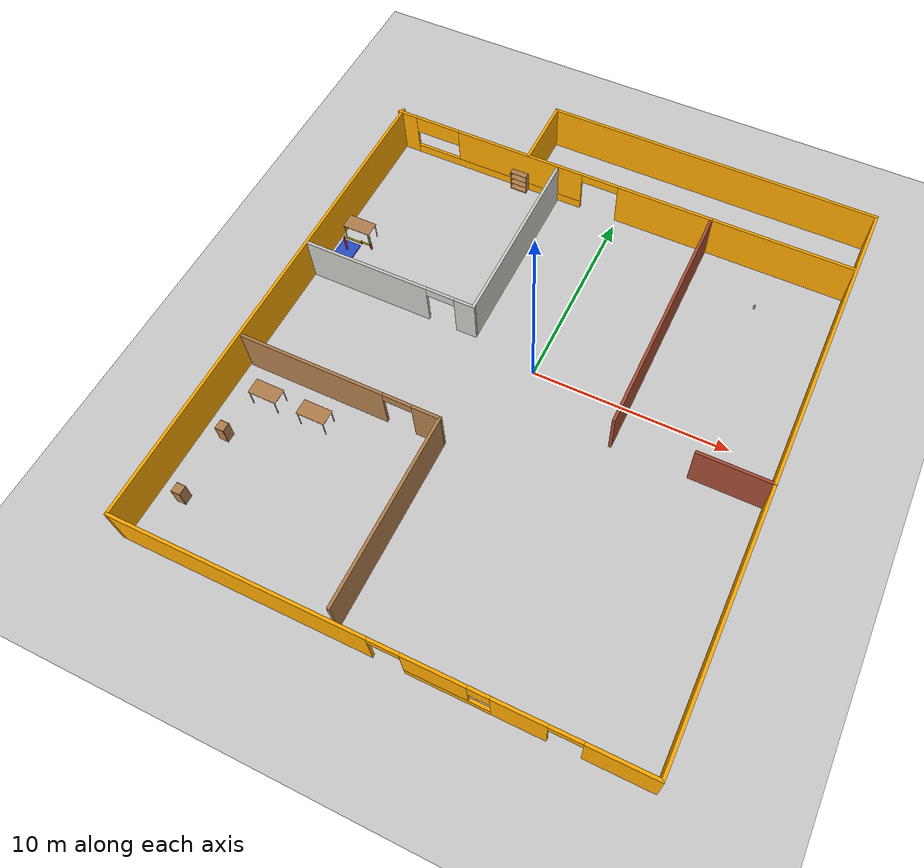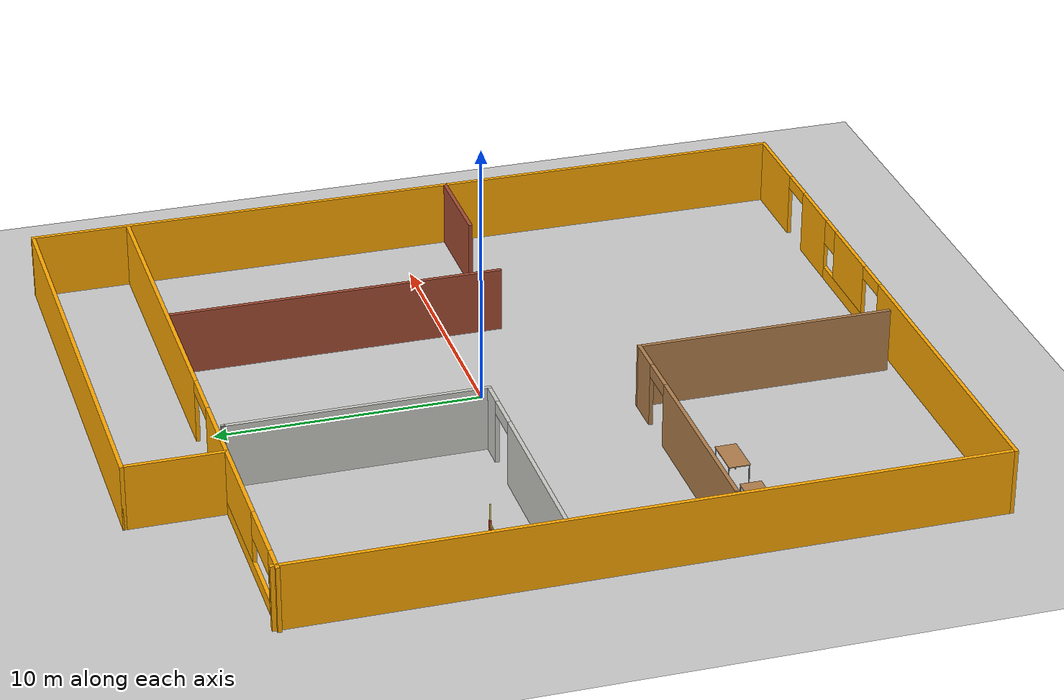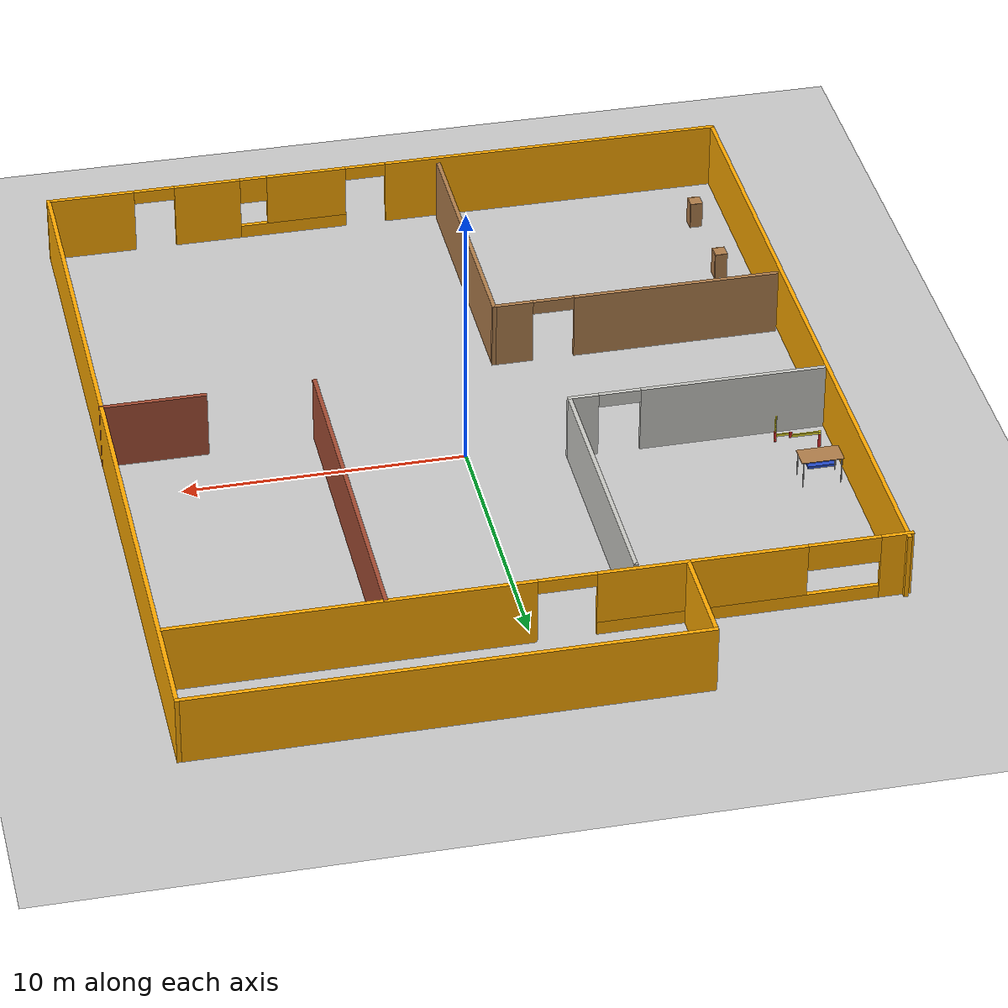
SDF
<sdf version="1.6">
 <world name="default">
  <plugin name="welcome" filename="libwelcome.so"/>
  <light name="sun" type="directional">
   <pose>0 0 10 0 -0 0</pose>
   <diffuse>0.8 0.8 0.8 1</diffuse>
   <specular>0.2 0.2 0.2 1</specular>
   <attenuation>
    <range>1000</range>
    <constant>0.9</constant>
    <linear>0.01</linear>
    <quadratic>0.001</quadratic>
   </attenuation>
   <direction>-0.5 0.1 -0.9</direction>
  </light>
  <model name="ground_plane">
   <static>1</static>
   <link name="link">
    <collision name="collision">
     <geometry><plane><normal>0 0 1</normal><size>100 100</size></plane></geometry>
     <surface>
      <contact><collide_bitmask>65535</collide_bitmask></contact>
      <friction><ode><mu>100</mu><mu2>50</mu2></ode></friction>
     </surface>
    </collision>
    <visual name="visual">
     <cast_shadows>0</cast_shadows>
     <geometry><plane><normal>0 0 1</normal><size>100 100</size></plane></geometry>
     <material>
      <script><uri>file://media/materials/scripts/gazebo.material</uri><name>Gazebo/Grey</name></script>
     </material>
    </visual>
   </link>
  </model>
  <gravity>0 0 -9.8</gravity>
  <magnetic_field>6e-06 2.3e-05 -4.2e-05</magnetic_field>
  <atmosphere type="adiabatic"/>
  <physics name="default_physics" default="0" type="ode">
   <max_step_size>0.001</max_step_size>
   <real_time_factor>1</real_time_factor>
   <real_time_update_rate>1000</real_time_update_rate>
  </physics>
  <scene><ambient>0.4 0.4 0.4 1</ambient><background>0.7 0.7 0.7 1</background><shadows>1</shadows></scene>
  <spherical_coordinates>
   <surface_model>EARTH_WGS84</surface_model>
   <latitude_deg>0</latitude_deg>
   <longitude_deg>0</longitude_deg>
   <elevation>0</elevation>
   <heading_deg>0</heading_deg>
  </spherical_coordinates>
  <model name="myhome">
   <pose>-0.2343 -0.560846 0 0 -0 0</pose>
   <link name="Wall_1">
    <collision name="Wall_1_Collision">
     <geometry><box><size>29.75 0.15 2.5</size></box></geometry>
     <pose>0 0 1.25 0 -0 0</pose>
    </collision>
    <visual name="Wall_1_Visual">
     <pose>0 0 1.25 0 -0 0</pose>
     <geometry><box><size>29.75 0.15 2.5</size></box></geometry>
     <material>
      <script><uri>file://media/materials/scripts/gazebo.material</uri><name>Gazebo/Grey</name></script>
      <ambient>1 0.666667 0 1</ambient>
     </material>
     <meta><layer>0</layer></meta>
    </visual>
    <pose>12.6114 0 0 0 0 -1.5708</pose>
   </link>
   <link name="Wall_10">
    <collision name="Wall_10_Collision">
     <geometry><box><size>12.75 0.15 2.5</size></box></geometry>
     <pose>0 0 1.25 0 -0 0</pose>
    </collision>
    <visual name="Wall_10_Visual">
     <pose>0 0 1.25 0 -0 0</pose>
     <geometry><box><size>12.75 0.15 2.5</size></box></geometry>
     <material>
      <script><uri>file://media/materials/scripts/gazebo.material</uri><name>Gazebo/Bricks</name></script>
      <ambient>1 1 1 1</ambient>
     </material>
     <meta><layer>0</layer></meta>
    </visual>
    <pose>5.14276 4.76599 0 0 -0 1.5708</pose>
   </link>
   <link name="Wall_12">
    <collision name="Wall_12_Collision">
     <geometry><box><size>9.75 0.15 2.5</size></box></geometry>
     <pose>0 0 1.25 0 -0 0</pose>
    </collision>
    <visual name="Wall_12_Visual">
     <pose>0 0 1.25 0 -0 0</pose>
     <geometry><box><size>9.75 0.15 2.5</size></box></geometry>
     <material>
      <script><uri>file://media/materials/scripts/gazebo.material</uri><name>Gazebo/CeilingTiled</name></script>
      <ambient>1 1 1 1</ambient>
     </material>
     <meta><layer>0</layer></meta>
    </visual>
    <pose>-3.26226 6.09462 0 0 0 -1.5708</pose>
   </link>
   <link name="Wall_13">
    <pose>-7.81226 1.29462 0 0 -0 3.14159</pose>
    <visual name="Wall_13_Visual_0">
     <pose>-4.07417 0 1.25 0 -0 0</pose>
     <geometry><box><size>1.10167 0.15 2.5</size></box></geometry>
     <material>
      <script><uri>file://media/materials/scripts/gazebo.material</uri><name>Gazebo/CeilingTiled</name></script>
      <ambient>1 1 1 1</ambient>
     </material>
     <meta><layer>0</layer></meta>
    </visual>
    <collision name="Wall_13_Collision_0">
     <geometry><box><size>1.10167 0.15 2.5</size></box></geometry>
     <pose>-4.07417 0 1.25 0 -0 0</pose>
    </collision>
    <visual name="Wall_13_Visual_1">
     <pose>1.30083 0 1.25 0 -0 0</pose>
     <geometry><box><size>6.64833 0.15 2.5</size></box></geometry>
     <material>
      <script><uri>file://media/materials/scripts/gazebo.material</uri><name>Gazebo/CeilingTiled</name></script>
      <ambient>1 1 1 1</ambient>
     </material>
     <meta><layer>0</layer></meta>
    </visual>
    <collision name="Wall_13_Collision_1">
     <geometry><box><size>6.64833 0.15 2.5</size></box></geometry>
     <pose>1.30083 0 1.25 0 -0 0</pose>
    </collision>
    <visual name="Wall_13_Visual_2">
     <pose>-2.77333 0 2.25 0 -0 0</pose>
     <geometry><box><size>1.5 0.15 0.5</size></box></geometry>
     <material>
      <script><uri>file://media/materials/scripts/gazebo.material</uri><name>Gazebo/CeilingTiled</name></script>
      <ambient>1 1 1 1</ambient>
     </material>
     <meta><layer>0</layer></meta>
    </visual>
    <collision name="Wall_13_Collision_2">
     <geometry><box><size>1.5 0.15 0.5</size></box></geometry>
     <pose>-2.77333 0 2.25 0 -0 0</pose>
    </collision>
   </link>
   <link name="Wall_15">
    <collision name="Wall_15_Collision">
     <geometry><box><size>9.75 0.15 2.5</size></box></geometry>
     <pose>0 0 1.25 0 -0 0</pose>
    </collision>
    <visual name="Wall_15_Visual">
     <pose>0 0 1.25 0 -0 0</pose>
     <geometry><box><size>9.75 0.15 2.5</size></box></geometry>
     <material>
      <script><uri>file://media/materials/scripts/gazebo.material</uri><name>Gazebo/Wood</name></script>
      <ambient>1 1 1 1</ambient>
     </material>
     <meta><layer>0</layer></meta>
    </visual>
    <pose>-1.91009 -9.54132 0 0 -0 1.5708</pose>
   </link>
   <link name="Wall_16">
    <pose>-7.08509 -4.74132 0 0 -0 3.14159</pose>
    <visual name="Wall_16_Visual_0">
     <pose>-4.50456 0 1.25 0 -0 0</pose>
     <geometry><box><size>1.49087 0.15 2.5</size></box></geometry>
     <material>
      <script><uri>file://media/materials/scripts/gazebo.material</uri><name>Gazebo/Wood</name></script>
      <ambient>1 1 1 1</ambient>
     </material>
     <meta><layer>0</layer></meta>
    </visual>
    <collision name="Wall_16_Collision_0">
     <geometry><box><size>1.49087 0.15 2.5</size></box></geometry>
     <pose>-4.50456 0 1.25 0 -0 0</pose>
    </collision>
    <visual name="Wall_16_Visual_1">
     <pose>1.49544 0 1.25 0 -0 0</pose>
     <geometry><box><size>7.50913 0.15 2.5</size></box></geometry>
     <material>
      <script><uri>file://media/materials/scripts/gazebo.material</uri><name>Gazebo/Wood</name></script>
      <ambient>1 1 1 1</ambient>
     </material>
     <meta><layer>0</layer></meta>
    </visual>
    <collision name="Wall_16_Collision_1">
     <geometry><box><size>7.50913 0.15 2.5</size></box></geometry>
     <pose>1.49544 0 1.25 0 -0 0</pose>
    </collision>
    <visual name="Wall_16_Visual_2">
     <pose>-3.00913 0 2.25 0 -0 0</pose>
     <geometry><box><size>1.5 0.15 0.5</size></box></geometry>
     <material>
      <script><uri>file://media/materials/scripts/gazebo.material</uri><name>Gazebo/Wood</name></script>
      <ambient>1 1 1 1</ambient>
     </material>
     <meta><layer>0</layer></meta>
    </visual>
    <collision name="Wall_16_Collision_2">
     <geometry><box><size>1.5 0.15 0.5</size></box></geometry>
     <pose>-3.00913 0 2.25 0 -0 0</pose>
    </collision>
   </link>
   <link name="Wall_18">
    <collision name="Wall_18_Collision">
     <geometry><box><size>0.15 0.15 2.5</size></box></geometry>
     <pose>0 0 1.25 0 -0 0</pose>
    </collision>
    <visual name="Wall_18_Visual">
     <pose>0 0 1.25 0 -0 0</pose>
     <geometry><box><size>0.15 0.15 2.5</size></box></geometry>
     <material>
      <script><uri>file://media/materials/scripts/gazebo.material</uri><name>Gazebo/Grey</name></script>
      <ambient>1 1 1 1</ambient>
     </material>
     <meta><layer>0</layer></meta>
    </visual>
    <pose>-3.26226 10.8946 0 0 -0 0</pose>
   </link>
   <link name="Wall_2">
    <pose>0.061369 -14.8 0 0 -0 3.14159</pose>
    <visual name="Wall_2_Visual_0">
     <pose>-11.0147 0 1.25 0 -0 0</pose>
     <geometry><box><size>3.22061 0.15 2.5</size></box></geometry>
     <material>
      <script><uri>file://media/materials/scripts/gazebo.material</uri><name>Gazebo/Grey</name></script>
      <ambient>1 0.666667 0 1</ambient>
     </material>
     <meta><layer>0</layer></meta>
    </visual>
    <collision name="Wall_2_Collision_0">
     <geometry><box><size>3.22061 0.15 2.5</size></box></geometry>
     <pose>-11.0147 0 1.25 0 -0 0</pose>
    </collision>
    <visual name="Wall_2_Visual_1">
     <pose>-6.67894 0 1.25 0 -0 0</pose>
     <geometry><box><size>2.4509 0.15 2.5</size></box></geometry>
     <material>
      <script><uri>file://media/materials/scripts/gazebo.material</uri><name>Gazebo/Grey</name></script>
      <ambient>1 0.666667 0 1</ambient>
     </material>
     <meta><layer>0</layer></meta>
    </visual>
    <collision name="Wall_2_Collision_1">
     <geometry><box><size>2.4509 0.15 2.5</size></box></geometry>
     <pose>-6.67894 0 1.25 0 -0 0</pose>
    </collision>
    <visual name="Wall_2_Visual_2">
     <pose>6.31564 0 1.25 0 -0 0</pose>
     <geometry><box><size>12.6187 0.15 2.5</size></box></geometry>
     <material>
      <script><uri>file://media/materials/scripts/gazebo.material</uri><name>Gazebo/Grey</name></script>
      <ambient>1 0.666667 0 1</ambient>
     </material>
     <meta><layer>0</layer></meta>
    </visual>
    <collision name="Wall_2_Collision_2">
     <geometry><box><size>12.6187 0.15 2.5</size></box></geometry>
     <pose>6.31564 0 1.25 0 -0 0</pose>
    </collision>
    <visual name="Wall_2_Visual_3">
     <pose>-3.47361 0 0.25 0 -0 0</pose>
     <geometry><box><size>3.95977 0.15 0.5</size></box></geometry>
     <material>
      <script><uri>file://media/materials/scripts/gazebo.material</uri><name>Gazebo/Grey</name></script>
      <ambient>1 0.666667 0 1</ambient>
     </material>
     <meta><layer>0</layer></meta>
    </visual>
    <collision name="Wall_2_Collision_3">
     <geometry><box><size>3.95977 0.15 0.5</size></box></geometry>
     <pose>-3.47361 0 0.25 0 -0 0</pose>
    </collision>
    <visual name="Wall_2_Visual_4">
     <pose>-2.97361 0 1.5 0 -0 0</pose>
     <geometry><box><size>2.95977 0.15 2</size></box></geometry>
     <material>
      <script><uri>file://media/materials/scripts/gazebo.material</uri><name>Gazebo/Grey</name></script>
      <ambient>1 0.666667 0 1</ambient>
     </material>
     <meta><layer>0</layer></meta>
    </visual>
    <collision name="Wall_2_Collision_4">
     <geometry><box><size>2.95977 0.15 2</size></box></geometry>
     <pose>-2.97361 0 1.5 0 -0 0</pose>
    </collision>
    <visual name="Wall_2_Visual_5">
     <pose>-4.95349 0 2 0 -0 0</pose>
     <geometry><box><size>1 0.15 1</size></box></geometry>
     <material>
      <script><uri>file://media/materials/scripts/gazebo.material</uri><name>Gazebo/Grey</name></script>
      <ambient>1 0.666667 0 1</ambient>
     </material>
     <meta><layer>0</layer></meta>
    </visual>
    <collision name="Wall_2_Collision_5">
     <geometry><box><size>1 0.15 1</size></box></geometry>
     <pose>-4.95349 0 2 0 -0 0</pose>
    </collision>
    <visual name="Wall_2_Visual_6">
     <pose>-8.65439 0 2.25 0 -0 0</pose>
     <geometry><box><size>1.5 0.15 0.5</size></box></geometry>
     <material>
      <script><uri>file://media/materials/scripts/gazebo.material</uri><name>Gazebo/Grey</name></script>
      <ambient>1 0.666667 0 1</ambient>
     </material>
     <meta><layer>0</layer></meta>
    </visual>
    <collision name="Wall_2_Collision_6">
     <geometry><box><size>1.5 0.15 0.5</size></box></geometry>
     <pose>-8.65439 0 2.25 0 -0 0</pose>
    </collision>
    <visual name="Wall_2_Visual_7">
     <pose>-0.743723 0 2.25 0 -0 0</pose>
     <geometry><box><size>1.5 0.15 0.5</size></box></geometry>
     <material>
      <script><uri>file://media/materials/scripts/gazebo.material</uri><name>Gazebo/Grey</name></script>
      <ambient>1 0.666667 0 1</ambient>
     </material>
     <meta><layer>0</layer></meta>
    </visual>
    <collision name="Wall_2_Collision_7">
     <geometry><box><size>1.5 0.15 0.5</size></box></geometry>
     <pose>-0.743723 0 2.25 0 -0 0</pose>
    </collision>
   </link>
   <link name="Wall_22">
    <collision name="Wall_22_Collision">
     <geometry><box><size>26.25 0.15 2.5</size></box></geometry>
     <pose>0 0 1.25 0 -0 0</pose>
    </collision>
    <visual name="Wall_22_Visual">
     <pose>0 0 1.25 0 -0 0</pose>
     <geometry><box><size>26.25 0.15 2.5</size></box></geometry>
     <material>
      <script><uri>file://media/materials/scripts/gazebo.material</uri><name>Gazebo/Grey</name></script>
      <ambient>1 0.666667 0 1</ambient>
     </material>
     <meta><layer>0</layer></meta>
    </visual>
    <pose>-12.4886 -1.75 0 0 -0 1.5708</pose>
   </link>
   <link name="Wall_24">
    <collision name="Wall_24_Collision">
     <geometry><box><size>17.75 0.15 2.5</size></box></geometry>
     <pose>0 0 1.25 0 -0 0</pose>
    </collision>
    <visual name="Wall_24_Visual">
     <pose>0 0 1.25 0 -0 0</pose>
     <geometry><box><size>17.75 0.15 2.5</size></box></geometry>
     <material>
      <script><uri>file://media/materials/scripts/gazebo.material</uri><name>Gazebo/Grey</name></script>
      <ambient>1 0.666667 0 1</ambient>
     </material>
     <meta><layer>0</layer></meta>
    </visual>
    <pose>3.81137 14.8 0 0 -0 3.14159</pose>
   </link>
   <link name="Wall_25">
    <collision name="Wall_25_Collision">
     <geometry><box><size>3.75 0.15 2.5</size></box></geometry>
     <pose>0 0 1.25 0 -0 0</pose>
    </collision>
    <visual name="Wall_25_Visual">
     <pose>0 0 1.25 0 -0 0</pose>
     <geometry><box><size>3.75 0.15 2.5</size></box></geometry>
     <material>
      <script><uri>file://media/materials/scripts/gazebo.material</uri><name>Gazebo/Grey</name></script>
      <ambient>1 0.666667 0 1</ambient>
     </material>
     <meta><layer>0</layer></meta>
    </visual>
    <pose>-4.98863 13 0 0 0 -1.5708</pose>
   </link>
   <link name="Wall_28">
    <collision name="Wall_28_Collision">
     <geometry><box><size>3.75 0.15 2.5</size></box></geometry>
     <pose>0 0 1.25 0 -0 0</pose>
    </collision>
    <visual name="Wall_28_Visual">
     <pose>0 0 1.25 0 -0 0</pose>
     <geometry><box><size>3.75 0.15 2.5</size></box></geometry>
     <material>
      <script><uri>file://media/materials/scripts/gazebo.material</uri><name>Gazebo/Bricks</name></script>
      <ambient>1 1 1 1</ambient>
     </material>
     <meta><layer>0</layer></meta>
    </visual>
    <pose>10.8145 -1.49857 0 0 -0 0</pose>
   </link>
   <link name="Wall_7">
    <pose>-0.064501 11.1407 0 0 -0 0</pose>
    <visual name="Wall_7_Visual_0">
     <pose>-12.0643 0 1.25 0 -0 0</pose>
     <geometry><box><size>1.1214 0.15 2.5</size></box></geometry>
     <material>
      <script><uri>file://media/materials/scripts/gazebo.material</uri><name>Gazebo/Grey</name></script>
      <ambient>1 0.666667 0 1</ambient>
     </material>
     <meta><layer>0</layer></meta>
    </visual>
    <collision name="Wall_7_Collision_0">
     <geometry><box><size>1.1214 0.15 2.5</size></box></geometry>
     <pose>-12.0643 0 1.25 0 -0 0</pose>
    </collision>
    <visual name="Wall_7_Visual_1">
     <pose>6.38957 0 1.25 0 -0 0</pose>
     <geometry><box><size>12.4709 0.15 2.5</size></box></geometry>
     <material>
      <script><uri>file://media/materials/scripts/gazebo.material</uri><name>Gazebo/Grey</name></script>
      <ambient>1 0.666667 0 1</ambient>
     </material>
     <meta><layer>0</layer></meta>
    </visual>
    <collision name="Wall_7_Collision_1">
     <geometry><box><size>12.4709 0.15 2.5</size></box></geometry>
     <pose>6.38957 0 1.25 0 -0 0</pose>
    </collision>
    <visual name="Wall_7_Visual_2">
     <pose>-6.67473 0 0.25 0 -0 0</pose>
     <geometry><box><size>9.65773 0.15 0.5</size></box></geometry>
     <material>
      <script><uri>file://media/materials/scripts/gazebo.material</uri><name>Gazebo/Grey</name></script>
      <ambient>1 0.666667 0 1</ambient>
     </material>
     <meta><layer>0</layer></meta>
    </visual>
    <collision name="Wall_7_Collision_2">
     <geometry><box><size>9.65773 0.15 0.5</size></box></geometry>
     <pose>-6.67473 0 0.25 0 -0 0</pose>
    </collision>
    <visual name="Wall_7_Visual_3">
     <pose>-5.42473 0 1.5 0 -0 0</pose>
     <geometry><box><size>7.15773 0.15 2</size></box></geometry>
     <material>
      <script><uri>file://media/materials/scripts/gazebo.material</uri><name>Gazebo/Grey</name></script>
      <ambient>1 0.666667 0 1</ambient>
     </material>
     <meta><layer>0</layer></meta>
    </visual>
    <collision name="Wall_7_Collision_3">
     <geometry><box><size>7.15773 0.15 2</size></box></geometry>
     <pose>-5.42473 0 1.5 0 -0 0</pose>
    </collision>
    <visual name="Wall_7_Visual_4">
     <pose>-10.2536 0 2 0 -0 0</pose>
     <geometry><box><size>2.5 0.15 1</size></box></geometry>
     <material>
      <script><uri>file://media/materials/scripts/gazebo.material</uri><name>Gazebo/Grey</name></script>
      <ambient>1 0.666667 0 1</ambient>
     </material>
     <meta><layer>0</layer></meta>
    </visual>
    <collision name="Wall_7_Collision_4">
     <geometry><box><size>2.5 0.15 1</size></box></geometry>
     <pose>-10.2536 0 2 0 -0 0</pose>
    </collision>
    <visual name="Wall_7_Visual_5">
     <pose>-0.845866 0 2.25 0 -0 0</pose>
     <geometry><box><size>2 0.15 0.5</size></box></geometry>
     <material>
      <script><uri>file://media/materials/scripts/gazebo.material</uri><name>Gazebo/Grey</name></script>
      <ambient>1 0.666667 0 1</ambient>
     </material>
     <meta><layer>0</layer></meta>
    </visual>
    <collision name="Wall_7_Collision_5">
     <geometry><box><size>2 0.15 0.5</size></box></geometry>
     <pose>-0.845866 0 2.25 0 -0 0</pose>
    </collision>
   </link>
   <static>1</static>
  </model>
  <model name="bookshelf">
   <static>1</static>
   <link name="link">
    <inertial><mass>1</mass></inertial>
    <collision name="back">
     <pose>0 0.005 0.6 0 -0 0</pose>
     <geometry><box><size>0.9 0.01 1.2</size></box></geometry>
    </collision>
    <visual name="visual1">
     <pose>0 0.005 0.6 0 -0 0</pose>
     <geometry><box><size>0.9 0.01 1.2</size></box></geometry>
     <material>
      <script><uri>file://media/materials/scripts/gazebo.material</uri><name>Gazebo/Wood</name></script>
     </material>
    </visual>
    <collision name="left_side">
     <pose>0.45 -0.195 0.6 0 -0 0</pose>
     <geometry><box><size>0.02 0.4 1.2</size></box></geometry>
    </collision>
    <visual name="visual2">
     <pose>0.45 -0.195 0.6 0 -0 0</pose>
     <geometry><box><size>0.02 0.4 1.2</size></box></geometry>
     <material>
      <script><uri>file://media/materials/scripts/gazebo.material</uri><name>Gazebo/Wood</name></script>
     </material>
    </visual>
    <collision name="right_side">
     <pose>-0.45 -0.195 0.6 0 -0 0</pose>
     <geometry><box><size>0.02 0.4 1.2</size></box></geometry>
    </collision>
    <visual name="visual3">
     <pose>-0.45 -0.195 0.6 0 -0 0</pose>
     <geometry><box><size>0.02 0.4 1.2</size></box></geometry>
     <material>
      <script><uri>file://media/materials/scripts/gazebo.material</uri><name>Gazebo/Wood</name></script>
     </material>
    </visual>
    <collision name="bottom">
     <pose>0 -0.195 0.03 0 -0 0</pose>
     <geometry><box><size>0.88 0.4 0.06</size></box></geometry>
    </collision>
    <visual name="visual4">
     <pose>0 -0.195 0.03 0 -0 0</pose>
     <geometry><box><size>0.88 0.4 0.06</size></box></geometry>
     <material>
      <script><uri>file://media/materials/scripts/gazebo.material</uri><name>Gazebo/Wood</name></script>
     </material>
    </visual>
    <collision name="top">
     <pose>0 -0.195 1.19 0 -0 0</pose>
     <geometry><box><size>0.88 0.4 0.02</size></box></geometry>
    </collision>
    <visual name="visual5">
     <pose>0 -0.195 1.19 0 -0 0</pose>
     <geometry><box><size>0.88 0.4 0.02</size></box></geometry>
     <material>
      <script><uri>file://media/materials/scripts/gazebo.material</uri><name>Gazebo/Wood</name></script>
     </material>
    </visual>
    <collision name="low_shelf">
     <pose>0 -0.195 0.43 0 -0 0</pose>
     <geometry><box><size>0.88 0.4 0.02</size></box></geometry>
    </collision>
    <visual name="visual6">
     <pose>0 -0.195 0.43 0 -0 0</pose>
     <geometry><box><size>0.88 0.4 0.02</size></box></geometry>
     <material>
      <script><uri>file://media/materials/scripts/gazebo.material</uri><name>Gazebo/Wood</name></script>
     </material>
    </visual>
    <collision name="high_shelf">
     <pose>0 -0.195 0.8 0 -0 0</pose>
     <geometry><box><size>0.88 0.4 0.02</size></box></geometry>
    </collision>
    <visual name="visual7">
     <pose>0 -0.195 0.8 0 -0 0</pose>
     <geometry><box><size>0.88 0.4 0.02</size></box></geometry>
     <material>
      <script><uri>file://media/materials/scripts/gazebo.material</uri><name>Gazebo/Wood</name></script>
     </material>
    </visual>
   </link>
   <pose>-5.63915 10.5886 0 0 -0 0</pose>
  </model>
  <model name="beer">
   <link name="link">
    <pose>0 0 0.115 0 -0 0</pose>
    <inertial>
     <mass>0.39</mass>
     <inertia><ixx>0.00058</ixx><ixy>0</ixy><ixz>0</ixz><iyy>0.00058</iyy><iyz>0</iyz><izz>0.00019</izz></inertia>
    </inertial>
    <collision name="collision">
     <geometry><cylinder><radius>0.055</radius><length>0.23</length></cylinder></geometry>
    </collision>
    <visual name="visual">
     <geometry><cylinder><radius>0.055</radius><length>0.23</length></cylinder></geometry>
     <material>
      <script>
       <uri>model://beer/materials/scripts</uri>
       <uri>model://beer/materials/textures</uri>
       <name>Beer/Diffuse</name>
      </script>
     </material>
    </visual>
   </link>
   <pose>8.44687 8.20103 -2e-06 1e-06 -0 -2.4e-05</pose>
  </model>
  <model name="cabinet_1">
   <static>1</static>
   <link name="cabinet_bottom_plate">
    <inertial>
     <pose>0 0 -1 0 -0 0</pose>
     <inertia><ixx>2.05</ixx><ixy>0</ixy><ixz>0</ixz><iyy>2.05</iyy><iyz>0</iyz><izz>2.05</izz></inertia>
     <mass>25</mass>
    </inertial>
    <collision name="cabinet_bottom_plate_geom">
     <pose>0 0 0.01 0 -0 0</pose>
     <geometry><box><size>0.45 0.45 0.02</size></box></geometry>
    </collision>
    <visual name="cabinet_bottom_plate_geom_visual">
     <pose>0 0 0.01 0 -0 0</pose>
     <geometry><box><size>0.45 0.45 0.02</size></box></geometry>
     <material>
      <script><uri>file://media/materials/scripts/gazebo.material</uri><name>Gazebo/Wood</name></script>
     </material>
    </visual>
    <collision name="cabinet_bottom_plate_geom_cabinet_back_plate">
     <pose>0.235 0 0.51 0 -0 0</pose>
     <geometry><box><size>0.02 0.45 1.02</size></box></geometry>
    </collision>
    <visual name="cabinet_bottom_plate_geom_cabinet_back_plate_visual">
     <pose>0.235 0 0.51 0 -0 0</pose>
     <geometry><box><size>0.02 0.45 1.02</size></box></geometry>
     <material>
      <script><uri>file://media/materials/scripts/gazebo.material</uri><name>Gazebo/Wood</name></script>
     </material>
    </visual>
    <collision name="cabinet_bottom_plate_geom_cabinet_left_plate">
     <pose>0 0.235 0.51 0 -0 0</pose>
     <geometry><box><size>0.45 0.02 1.02</size></box></geometry>
    </collision>
    <visual name="cabinet_bottom_plate_geom_cabinet_left_plate_visual">
     <pose>0 0.235 0.51 0 -0 0</pose>
     <geometry><box><size>0.45 0.02 1.02</size></box></geometry>
     <material>
      <script><uri>file://media/materials/scripts/gazebo.material</uri><name>Gazebo/Wood</name></script>
     </material>
    </visual>
    <collision name="cabinet_bottom_plate_geom_cabinet_middle_plate">
     <pose>0 0 0.51 0 -0 0</pose>
     <geometry><box><size>0.45 0.45 0.02</size></box></geometry>
    </collision>
    <visual name="cabinet_bottom_plate_geom_cabinet_middle_plate_visual">
     <pose>0 0 0.51 0 -0 0</pose>
     <geometry><box><size>0.45 0.45 0.02</size></box></geometry>
     <material>
      <script><uri>file://media/materials/scripts/gazebo.material</uri><name>Gazebo/Wood</name></script>
     </material>
    </visual>
    <collision name="cabinet_bottom_plate_geom_cabinet_right_plate">
     <pose>0 -0.235 0.51 0 -0 0</pose>
     <geometry><box><size>0.45 0.02 1.02</size></box></geometry>
    </collision>
    <visual name="cabinet_bottom_plate_geom_cabinet_right_plate_visual">
     <pose>0 -0.235 0.51 0 -0 0</pose>
     <geometry><box><size>0.45 0.02 1.02</size></box></geometry>
     <material>
      <script><uri>file://media/materials/scripts/gazebo.material</uri><name>Gazebo/Wood</name></script>
     </material>
    </visual>
    <collision name="cabinet_bottom_plate_geom_cabinet_top_plate">
     <pose>0 0 1.01 0 -0 0</pose>
     <geometry><box><size>0.45 0.45 0.02</size></box></geometry>
    </collision>
    <visual name="cabinet_bottom_plate_geom_cabinet_top_plate_visual">
     <pose>0 0 1.01 0 -0 0</pose>
     <geometry><box><size>0.45 0.45 0.02</size></box></geometry>
     <material>
      <script><uri>file://media/materials/scripts/gazebo.material</uri><name>Gazebo/Wood</name></script>
     </material>
    </visual>
   </link>
   <pose>-11.4912 -9.22779 0 0 -0 0</pose>
  </model>
  <model name="cabinet_2">
   <static>1</static>
   <link name="cabinet_bottom_plate">
    <inertial>
     <pose>0 0 -1 0 -0 0</pose>
     <inertia><ixx>2.05</ixx><ixy>0</ixy><ixz>0</ixz><iyy>2.05</iyy><iyz>0</iyz><izz>2.05</izz></inertia>
     <mass>25</mass>
    </inertial>
    <collision name="cabinet_bottom_plate_geom">
     <pose>0 0 0.01 0 -0 0</pose>
     <geometry><box><size>0.45 0.45 0.02</size></box></geometry>
    </collision>
    <visual name="cabinet_bottom_plate_geom_visual">
     <pose>0 0 0.01 0 -0 0</pose>
     <geometry><box><size>0.45 0.45 0.02</size></box></geometry>
     <material>
      <script><uri>file://media/materials/scripts/gazebo.material</uri><name>Gazebo/Wood</name></script>
     </material>
    </visual>
    <collision name="cabinet_bottom_plate_geom_cabinet_back_plate">
     <pose>0.235 0 0.51 0 -0 0</pose>
     <geometry><box><size>0.02 0.45 1.02</size></box></geometry>
    </collision>
    <visual name="cabinet_bottom_plate_geom_cabinet_back_plate_visual">
     <pose>0.235 0 0.51 0 -0 0</pose>
     <geometry><box><size>0.02 0.45 1.02</size></box></geometry>
     <material>
      <script><uri>file://media/materials/scripts/gazebo.material</uri><name>Gazebo/Wood</name></script>
     </material>
    </visual>
    <collision name="cabinet_bottom_plate_geom_cabinet_left_plate">
     <pose>0 0.235 0.51 0 -0 0</pose>
     <geometry><box><size>0.45 0.02 1.02</size></box></geometry>
    </collision>
    <visual name="cabinet_bottom_plate_geom_cabinet_left_plate_visual">
     <pose>0 0.235 0.51 0 -0 0</pose>
     <geometry><box><size>0.45 0.02 1.02</size></box></geometry>
     <material>
      <script><uri>file://media/materials/scripts/gazebo.material</uri><name>Gazebo/Wood</name></script>
     </material>
    </visual>
    <collision name="cabinet_bottom_plate_geom_cabinet_middle_plate">
     <pose>0 0 0.51 0 -0 0</pose>
     <geometry><box><size>0.45 0.45 0.02</size></box></geometry>
    </collision>
    <visual name="cabinet_bottom_plate_geom_cabinet_middle_plate_visual">
     <pose>0 0 0.51 0 -0 0</pose>
     <geometry><box><size>0.45 0.45 0.02</size></box></geometry>
     <material>
      <script><uri>file://media/materials/scripts/gazebo.material</uri><name>Gazebo/Wood</name></script>
     </material>
    </visual>
    <collision name="cabinet_bottom_plate_geom_cabinet_right_plate">
     <pose>0 -0.235 0.51 0 -0 0</pose>
     <geometry><box><size>0.45 0.02 1.02</size></box></geometry>
    </collision>
    <visual name="cabinet_bottom_plate_geom_cabinet_right_plate_visual">
     <pose>0 -0.235 0.51 0 -0 0</pose>
     <geometry><box><size>0.45 0.02 1.02</size></box></geometry>
     <material>
      <script><uri>file://media/materials/scripts/gazebo.material</uri><name>Gazebo/Wood</name></script>
     </material>
    </visual>
    <collision name="cabinet_bottom_plate_geom_cabinet_top_plate">
     <pose>0 0 1.01 0 -0 0</pose>
     <geometry><box><size>0.45 0.45 0.02</size></box></geometry>
    </collision>
    <visual name="cabinet_bottom_plate_geom_cabinet_top_plate_visual">
     <pose>0 0 1.01 0 -0 0</pose>
     <geometry><box><size>0.45 0.45 0.02</size></box></geometry>
     <material>
      <script><uri>file://media/materials/scripts/gazebo.material</uri><name>Gazebo/Wood</name></script>
     </material>
    </visual>
   </link>
   <pose>-11.4499 -12.7184 0 0 -0 0</pose>
  </model>
  <model name="table">
   <static>1</static>
   <link name="link">
    <collision name="surface">
     <pose>0 0 1 0 -0 0</pose>
     <geometry><box><size>1.5 0.8 0.03</size></box></geometry>
     <surface><friction><ode><mu>0.6</mu><mu2>0.6</mu2></ode></friction></surface>
    </collision>
    <visual name="visual1">
     <pose>0 0 1 0 -0 0</pose>
     <geometry><box><size>1.5 0.8 0.03</size></box></geometry>
     <material>
      <script><uri>file://media/materials/scripts/gazebo.material</uri><name>Gazebo/Wood</name></script>
     </material>
    </visual>
    <collision name="front_left_leg">
     <pose>0.68 0.38 0.5 0 -0 0</pose>
     <geometry><cylinder><radius>0.02</radius><length>1</length></cylinder></geometry>
    </collision>
    <visual name="front_left_leg">
     <pose>0.68 0.38 0.5 0 -0 0</pose>
     <geometry><cylinder><radius>0.02</radius><length>1</length></cylinder></geometry>
     <material>
      <script><uri>file://media/materials/scripts/gazebo.material</uri><name>Gazebo/Grey</name></script>
     </material>
    </visual>
    <collision name="front_right_leg">
     <pose>0.68 -0.38 0.5 0 -0 0</pose>
     <geometry><cylinder><radius>0.02</radius><length>1</length></cylinder></geometry>
    </collision>
    <visual name="front_right_leg">
     <pose>0.68 -0.38 0.5 0 -0 0</pose>
     <geometry><cylinder><radius>0.02</radius><length>1</length></cylinder></geometry>
     <material>
      <script><uri>file://media/materials/scripts/gazebo.material</uri><name>Gazebo/Grey</name></script>
     </material>
    </visual>
    <collision name="back_right_leg">
     <pose>-0.68 -0.38 0.5 0 -0 0</pose>
     <geometry><cylinder><radius>0.02</radius><length>1</length></cylinder></geometry>
    </collision>
    <visual name="back_right_leg">
     <pose>-0.68 -0.38 0.5 0 -0 0</pose>
     <geometry><cylinder><radius>0.02</radius><length>1</length></cylinder></geometry>
     <material>
      <script><uri>file://media/materials/scripts/gazebo.material</uri><name>Gazebo/Grey</name></script>
     </material>
    </visual>
    <collision name="back_left_leg">
     <pose>-0.68 0.38 0.5 0 -0 0</pose>
     <geometry><cylinder><radius>0.02</radius><length>1</length></cylinder></geometry>
    </collision>
    <visual name="back_left_leg">
     <pose>-0.68 0.38 0.5 0 -0 0</pose>
     <geometry><cylinder><radius>0.02</radius><length>1</length></cylinder></geometry>
     <material>
      <script><uri>file://media/materials/scripts/gazebo.material</uri><name>Gazebo/Grey</name></script>
     </material>
    </visual>
   </link>
   <pose>-8.03014 -6.81331 0 0 -0 0</pose>
  </model>
  <model name="simple_arm">
   <link name="arm_base">
    <inertial>
     <pose>0 0 0.00099 0 -0 0</pose>
     <inertia><ixx>1.11</ixx><ixy>0</ixy><ixz>0</ixz><iyy>100.11</iyy><iyz>0</iyz><izz>1.01</izz></inertia>
     <mass>101</mass>
    </inertial>
    <collision name="arm_base_geom">
     <pose>0 0 0.05 0 -0 0</pose>
     <geometry><box><size>1 1 0.1</size></box></geometry>
    </collision>
    <visual name="arm_base_geom_visual">
     <pose>0 0 0.05 0 -0 0</pose>
     <geometry><box><size>1 1 0.1</size></box></geometry>
     <material>
      <script><uri>file://media/materials/scripts/gazebo.material</uri><name>Gazebo/Blue</name></script>
     </material>
    </visual>
    <collision name="arm_base_geom_arm_trunk">
     <pose>0 0 0.6 0 -0 0</pose>
     <geometry><cylinder><radius>0.05</radius><length>1</length></cylinder></geometry>
    </collision>
    <visual name="arm_base_geom_arm_trunk_visual">
     <pose>0 0 0.6 0 -0 0</pose>
     <geometry><cylinder><radius>0.05</radius><length>1</length></cylinder></geometry>
     <material>
      <script><uri>file://media/materials/scripts/gazebo.material</uri><name>Gazebo/Red</name></script>
     </material>
    </visual>
   </link>
   <link name="arm_shoulder_pan">
    <pose>0 0 1.1 0 -0 0</pose>
    <inertial>
     <pose>0.045455 0 0 0 -0 0</pose>
     <inertia><ixx>0.011</ixx><ixy>0</ixy><ixz>0</ixz><iyy>0.0225</iyy><iyz>0</iyz><izz>0.0135</izz></inertia>
     <mass>1.1</mass>
    </inertial>
    <collision name="arm_shoulder_pan_geom">
     <pose>0 0 0.05 0 -0 0</pose>
     <geometry><cylinder><radius>0.05</radius><length>0.1</length></cylinder></geometry>
    </collision>
    <visual name="arm_shoulder_pan_geom_visual">
     <pose>0 0 0.05 0 -0 0</pose>
     <geometry><cylinder><radius>0.05</radius><length>0.1</length></cylinder></geometry>
     <material>
      <script><uri>file://media/materials/scripts/gazebo.material</uri><name>Gazebo/Yellow</name></script>
     </material>
    </visual>
    <collision name="arm_shoulder_pan_geom_arm_shoulder">
     <pose>0.55 0 0.05 0 -0 0</pose>
     <geometry><box><size>1 0.05 0.1</size></box></geometry>
    </collision>
    <visual name="arm_shoulder_pan_geom_arm_shoulder_visual">
     <pose>0.55 0 0.05 0 -0 0</pose>
     <geometry><box><size>1 0.05 0.1</size></box></geometry>
     <material>
      <script><uri>file://media/materials/scripts/gazebo.material</uri><name>Gazebo/Yellow</name></script>
     </material>
    </visual>
   </link>
   <link name="arm_elbow_pan">
    <pose>1.05 0 1.1 0 -0 0</pose>
    <inertial>
     <pose>0.0875 0 0.083333 0 -0 0</pose>
     <inertia>
      <ixx>0.031</ixx>
      <ixy>0</ixy>
      <ixz>0.005</ixz>
      <iyy>0.07275</iyy>
      <iyz>0</iyz>
      <izz>0.04475</izz>
     </inertia>
     <mass>1.2</mass>
    </inertial>
    <collision name="arm_elbow_pan_geom">
     <pose>0 0 0.1 0 -0 0</pose>
     <geometry><cylinder><radius>0.05</radius><length>0.2</length></cylinder></geometry>
    </collision>
    <visual name="arm_elbow_pan_geom_visual">
     <pose>0 0 0.1 0 -0 0</pose>
     <geometry><cylinder><radius>0.05</radius><length>0.2</length></cylinder></geometry>
     <material>
      <script><uri>file://media/materials/scripts/gazebo.material</uri><name>Gazebo/Red</name></script>
     </material>
    </visual>
    <collision name="arm_elbow_pan_geom_arm_elbow">
     <pose>0.3 0 0.15 0 -0 0</pose>
     <geometry><box><size>0.5 0.03 0.1</size></box></geometry>
    </collision>
    <visual name="arm_elbow_pan_geom_arm_elbow_visual">
     <pose>0.3 0 0.15 0 -0 0</pose>
     <geometry><box><size>0.5 0.03 0.1</size></box></geometry>
     <material>
      <script><uri>file://media/materials/scripts/gazebo.material</uri><name>Gazebo/Yellow</name></script>
     </material>
    </visual>
    <collision name="arm_elbow_pan_geom_arm_wrist">
     <pose>0.55 0 0.15 0 -0 0</pose>
     <geometry><cylinder><radius>0.05</radius><length>0.3</length></cylinder></geometry>
    </collision>
    <visual name="arm_elbow_pan_geom_arm_wrist_visual">
     <pose>0.55 0 0.15 0 -0 0</pose>
     <geometry><cylinder><radius>0.05</radius><length>0.3</length></cylinder></geometry>
     <material>
      <script><uri>file://media/materials/scripts/gazebo.material</uri><name>Gazebo/Red</name></script>
     </material>
    </visual>
   </link>
   <link name="arm_wrist_lift">
    <pose>1.6 0 1.05 0 -0 0</pose>
    <inertial>
     <inertia><ixx>0.01</ixx><ixy>0</ixy><ixz>0</ixz><iyy>0.01</iyy><iyz>0</iyz><izz>0.001</izz></inertia>
     <mass>0.1</mass>
    </inertial>
    <collision name="arm_wrist_lift_geom">
     <pose>0 0 0.5 0 -0 0</pose>
     <geometry><cylinder><radius>0.03</radius><length>1</length></cylinder></geometry>
    </collision>
    <visual name="arm_wrist_lift_geom_visual">
     <pose>0 0 0.5 0 -0 0</pose>
     <geometry><cylinder><radius>0.03</radius><length>1</length></cylinder></geometry>
     <material>
      <script><uri>file://media/materials/scripts/gazebo.material</uri><name>Gazebo/Yellow</name></script>
     </material>
    </visual>
   </link>
   <link name="arm_wrist_roll">
    <pose>1.6 0 1 0 -0 0</pose>
    <inertial>
     <inertia><ixx>0.01</ixx><ixy>0</ixy><ixz>0</ixz><iyy>0.01</iyy><iyz>0</iyz><izz>0.001</izz></inertia>
     <mass>0.1</mass>
    </inertial>
    <collision name="arm_wrist_roll_geom">
     <pose>0 0 0.025 0 -0 0</pose>
     <geometry><cylinder><radius>0.05</radius><length>0.05</length></cylinder></geometry>
    </collision>
    <visual name="arm_wrist_roll_geom_visual">
     <pose>0 0 0.025 0 -0 0</pose>
     <geometry><cylinder><radius>0.05</radius><length>0.05</length></cylinder></geometry>
     <material>
      <script><uri>file://media/materials/scripts/gazebo.material</uri><name>Gazebo/Red</name></script>
     </material>
    </visual>
   </link>
   <joint name="arm_shoulder_pan_joint" type="revolute">
    <parent>arm_base</parent>
    <child>arm_shoulder_pan</child>
    <axis>
     <dynamics>
      <damping>1</damping>
      <friction>0</friction>
      <spring_reference>0</spring_reference>
      <spring_stiffness>0</spring_stiffness>
     </dynamics>
     <xyz>0 0 1</xyz>
     <use_parent_model_frame>1</use_parent_model_frame>
     <limit><lower>-1e+16</lower><upper>1e+16</upper></limit>
    </axis>
   </joint>
   <joint name="arm_elbow_pan_joint" type="revolute">
    <parent>arm_shoulder_pan</parent>
    <child>arm_elbow_pan</child>
    <axis>
     <dynamics>
      <damping>1</damping>
      <friction>0</friction>
      <spring_reference>0</spring_reference>
      <spring_stiffness>0</spring_stiffness>
     </dynamics>
     <xyz>0 0 1</xyz>
     <use_parent_model_frame>1</use_parent_model_frame>
     <limit><lower>-1e+16</lower><upper>1e+16</upper></limit>
    </axis>
   </joint>
   <joint name="arm_wrist_lift_joint" type="prismatic">
    <parent>arm_elbow_pan</parent>
    <child>arm_wrist_lift</child>
    <axis>
     <dynamics>
      <damping>1</damping>
      <friction>0</friction>
      <spring_reference>0</spring_reference>
      <spring_stiffness>0</spring_stiffness>
     </dynamics>
     <limit><lower>-0.8</lower><upper>0.1</upper></limit>
     <xyz>0 0 1</xyz>
     <use_parent_model_frame>1</use_parent_model_frame>
    </axis>
   </joint>
   <joint name="arm_wrist_roll_joint" type="revolute">
    <parent>arm_wrist_lift</parent>
    <child>arm_wrist_roll</child>
    <axis>
     <dynamics>
      <damping>1</damping>
      <friction>0</friction>
      <spring_reference>0</spring_reference>
      <spring_stiffness>0</spring_stiffness>
     </dynamics>
     <limit><lower>-2.99999</lower><upper>2.99999</upper></limit>
     <xyz>0 0 1</xyz>
     <use_parent_model_frame>1</use_parent_model_frame>
    </axis>
   </joint>
   <pose>-11.9564 2.69436 0 0 0 -0.004317</pose>
  </model>
  <model name="table_0">
   <static>1</static>
   <link name="link">
    <collision name="surface">
     <pose>0 0 1 0 -0 0</pose>
     <geometry><box><size>1.5 0.8 0.03</size></box></geometry>
     <surface><friction><ode><mu>0.6</mu><mu2>0.6</mu2></ode></friction></surface>
    </collision>
    <visual name="visual1">
     <pose>0 0 1 0 -0 0</pose>
     <geometry><box><size>1.5 0.8 0.03</size></box></geometry>
     <material>
      <script><uri>file://media/materials/scripts/gazebo.material</uri><name>Gazebo/Wood</name></script>
     </material>
    </visual>
    <collision name="front_left_leg">
     <pose>0.68 0.38 0.5 0 -0 0</pose>
     <geometry><cylinder><radius>0.02</radius><length>1</length></cylinder></geometry>
    </collision>
    <visual name="front_left_leg">
     <pose>0.68 0.38 0.5 0 -0 0</pose>
     <geometry><cylinder><radius>0.02</radius><length>1</length></cylinder></geometry>
     <material>
      <script><uri>file://media/materials/scripts/gazebo.material</uri><name>Gazebo/Grey</name></script>
     </material>
    </visual>
    <collision name="front_right_leg">
     <pose>0.68 -0.38 0.5 0 -0 0</pose>
     <geometry><cylinder><radius>0.02</radius><length>1</length></cylinder></geometry>
    </collision>
    <visual name="front_right_leg">
     <pose>0.68 -0.38 0.5 0 -0 0</pose>
     <geometry><cylinder><radius>0.02</radius><length>1</length></cylinder></geometry>
     <material>
      <script><uri>file://media/materials/scripts/gazebo.material</uri><name>Gazebo/Grey</name></script>
     </material>
    </visual>
    <collision name="back_right_leg">
     <pose>-0.68 -0.38 0.5 0 -0 0</pose>
     <geometry><cylinder><radius>0.02</radius><length>1</length></cylinder></geometry>
    </collision>
    <visual name="back_right_leg">
     <pose>-0.68 -0.38 0.5 0 -0 0</pose>
     <geometry><cylinder><radius>0.02</radius><length>1</length></cylinder></geometry>
     <material>
      <script><uri>file://media/materials/scripts/gazebo.material</uri><name>Gazebo/Grey</name></script>
     </material>
    </visual>
    <collision name="back_left_leg">
     <pose>-0.68 0.38 0.5 0 -0 0</pose>
     <geometry><cylinder><radius>0.02</radius><length>1</length></cylinder></geometry>
    </collision>
    <visual name="back_left_leg">
     <pose>-0.68 0.38 0.5 0 -0 0</pose>
     <geometry><cylinder><radius>0.02</radius><length>1</length></cylinder></geometry>
     <material>
      <script><uri>file://media/materials/scripts/gazebo.material</uri><name>Gazebo/Grey</name></script>
     </material>
    </visual>
   </link>
   <pose>-11.6764 3.7629 0 0 -0 0</pose>
  </model>
  <model name="table_1">
   <static>1</static>
   <link name="link">
    <collision name="surface">
     <pose>0 0 1 0 -0 0</pose>
     <geometry><box><size>1.5 0.8 0.03</size></box></geometry>
     <surface><friction><ode><mu>0.6</mu><mu2>0.6</mu2></ode></friction></surface>
    </collision>
    <visual name="visual1">
     <pose>0 0 1 0 -0 0</pose>
     <geometry><box><size>1.5 0.8 0.03</size></box></geometry>
     <material>
      <script><uri>file://media/materials/scripts/gazebo.material</uri><name>Gazebo/Wood</name></script>
     </material>
    </visual>
    <collision name="front_left_leg">
     <pose>0.68 0.38 0.5 0 -0 0</pose>
     <geometry><cylinder><radius>0.02</radius><length>1</length></cylinder></geometry>
    </collision>
    <visual name="front_left_leg">
     <pose>0.68 0.38 0.5 0 -0 0</pose>
     <geometry><cylinder><radius>0.02</radius><length>1</length></cylinder></geometry>
     <material>
      <script><uri>file://media/materials/scripts/gazebo.material</uri><name>Gazebo/Grey</name></script>
     </material>
    </visual>
    <collision name="front_right_leg">
     <pose>0.68 -0.38 0.5 0 -0 0</pose>
     <geometry><cylinder><radius>0.02</radius><length>1</length></cylinder></geometry>
    </collision>
    <visual name="front_right_leg">
     <pose>0.68 -0.38 0.5 0 -0 0</pose>
     <geometry><cylinder><radius>0.02</radius><length>1</length></cylinder></geometry>
     <material>
      <script><uri>file://media/materials/scripts/gazebo.material</uri><name>Gazebo/Grey</name></script>
     </material>
    </visual>
    <collision name="back_right_leg">
     <pose>-0.68 -0.38 0.5 0 -0 0</pose>
     <geometry><cylinder><radius>0.02</radius><length>1</length></cylinder></geometry>
    </collision>
    <visual name="back_right_leg">
     <pose>-0.68 -0.38 0.5 0 -0 0</pose>
     <geometry><cylinder><radius>0.02</radius><length>1</length></cylinder></geometry>
     <material>
      <script><uri>file://media/materials/scripts/gazebo.material</uri><name>Gazebo/Grey</name></script>
     </material>
    </visual>
    <collision name="back_left_leg">
     <pose>-0.68 0.38 0.5 0 -0 0</pose>
     <geometry><cylinder><radius>0.02</radius><length>1</length></cylinder></geometry>
    </collision>
    <visual name="back_left_leg">
     <pose>-0.68 0.38 0.5 0 -0 0</pose>
     <geometry><cylinder><radius>0.02</radius><length>1</length></cylinder></geometry>
     <material>
      <script><uri>file://media/materials/scripts/gazebo.material</uri><name>Gazebo/Grey</name></script>
     </material>
    </visual>
   </link>
   <pose>-10.6475 -6.79981 0 0 -0 0</pose>
  </model>
 </world>
</sdf>
